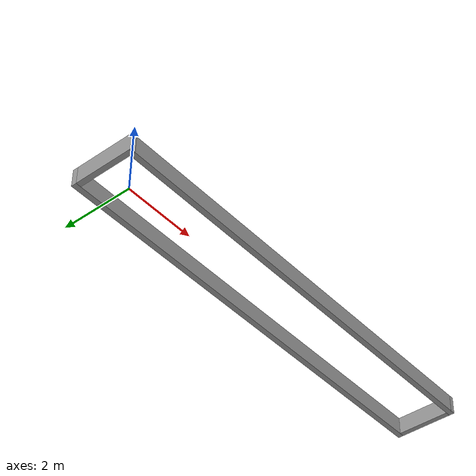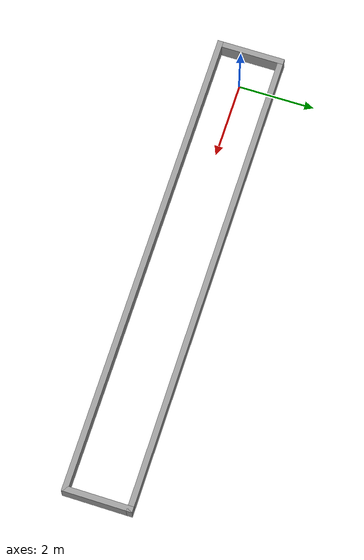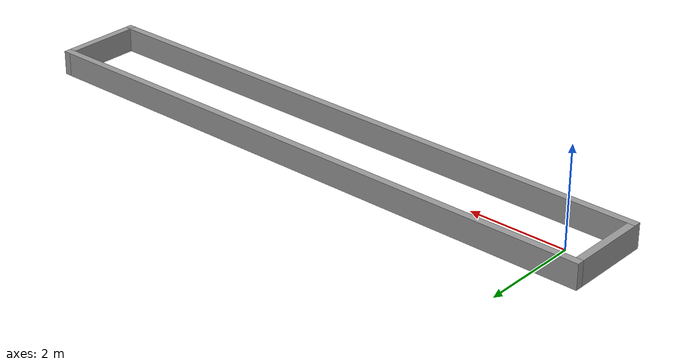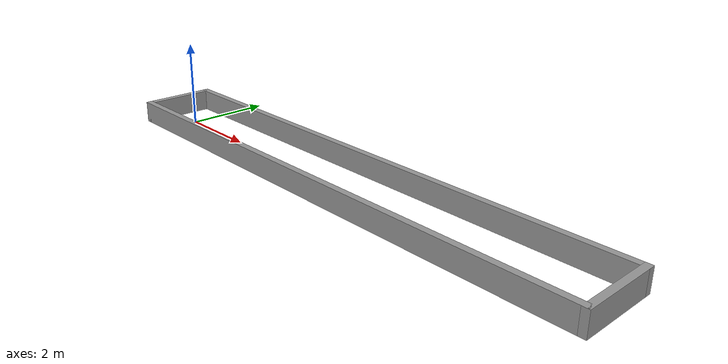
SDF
<?xml version='1.0'?>
<sdf version='1.6'>
  <model name='map2'>
    <pose frame=''>5.379 0.038 0 0 -0 0</pose>
    <link name='Wall_19'>
      <collision name='Wall_19_Collision'>
        <geometry>
          <box>
            <size>12.5 0.15 0.5</size>
          </box>
        </geometry>
        <pose frame=''>0 0 0.25 0 -0 0</pose>
      </collision>
      <visual name='Wall_19_Visual'>
        <pose frame=''>0 0 0.25 0 -0 0</pose>
        <geometry>
          <box>
            <size>12.5 0.15 0.5</size>
          </box>
        </geometry>
        <material>
          <script>
            <uri>file://media/materials/scripts/gazebo.material</uri>
            <name>Gazebo/Grey</name>
          </script>
          <ambient>1 1 1 1</ambient>
        </material>
        <meta>
          <layer>0</layer>
        </meta>
      </visual>
      <pose frame=''>0 -0.825 0 0 -0 0</pose>
    </link>
    <link name='Wall_22'>
      <collision name='Wall_22_Collision'>
        <geometry>
          <box>
            <size>1.80023 0.15 0.5</size>
          </box>
        </geometry>
        <pose frame=''>0 0 0.25 0 -0 0</pose>
      </collision>
      <visual name='Wall_22_Visual'>
        <pose frame=''>0 0 0.25 0 -0 0</pose>
        <geometry>
          <box>
            <size>1.80023 0.15 0.5</size>
          </box>
        </geometry>
        <material>
          <script>
            <uri>file://media/materials/scripts/gazebo.material</uri>
            <name>Gazebo/Grey</name>
          </script>
          <ambient>1 1 1 1</ambient>
        </material>
        <meta>
          <layer>0</layer>
        </meta>
      </visual>
      <pose frame=''>6.175 0 0 0 -0 1.5708</pose>
    </link>
    <link name='Wall_24'>
      <collision name='Wall_24_Collision'>
        <geometry>
          <box>
            <size>12.5 0.15 0.5</size>
          </box>
        </geometry>
        <pose frame=''>0 0 0.25 0 -0 0</pose>
      </collision>
      <visual name='Wall_24_Visual'>
        <pose frame=''>0 0 0.25 0 -0 0</pose>
        <geometry>
          <box>
            <size>12.5 0.15 0.5</size>
          </box>
        </geometry>
        <material>
          <script>
            <uri>file://media/materials/scripts/gazebo.material</uri>
            <name>Gazebo/Grey</name>
          </script>
          <ambient>1 1 1 1</ambient>
        </material>
        <meta>
          <layer>0</layer>
        </meta>
      </visual>
      <pose frame=''>0 0.825 0 0 -0 3.14159</pose>
    </link>
    <link name='Wall_26'>
      <collision name='Wall_26_Collision'>
        <geometry>
          <box>
            <size>1.8 0.15 0.5</size>
          </box>
        </geometry>
        <pose frame=''>0 0 0.25 0 -0 0</pose>
      </collision>
      <visual name='Wall_26_Visual'>
        <pose frame=''>0 0 0.25 0 -0 0</pose>
        <geometry>
          <box>
            <size>1.8 0.15 0.5</size>
          </box>
        </geometry>
        <material>
          <script>
            <uri>file://media/materials/scripts/gazebo.material</uri>
            <name>Gazebo/Grey</name>
          </script>
          <ambient>1 1 1 1</ambient>
        </material>
        <meta>
          <layer>0</layer>
        </meta>
      </visual>
      <pose frame=''>-6.175 0 0 0 -0 -1.5708</pose>
    </link>
    <static>1</static>
  </model>
</sdf>
